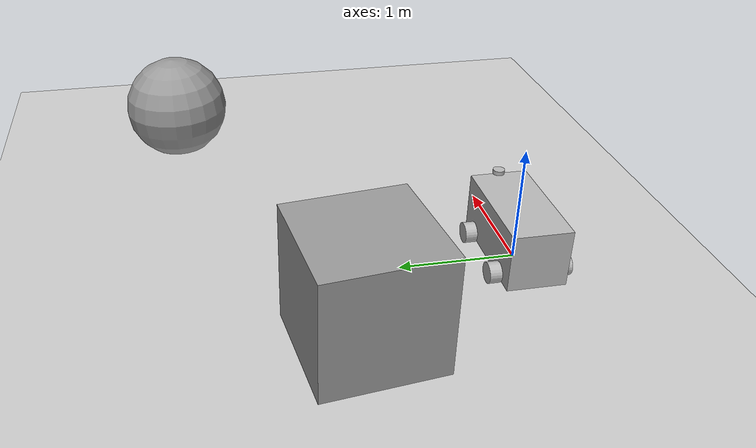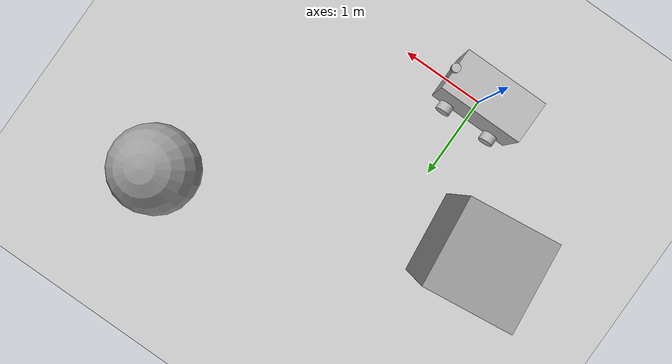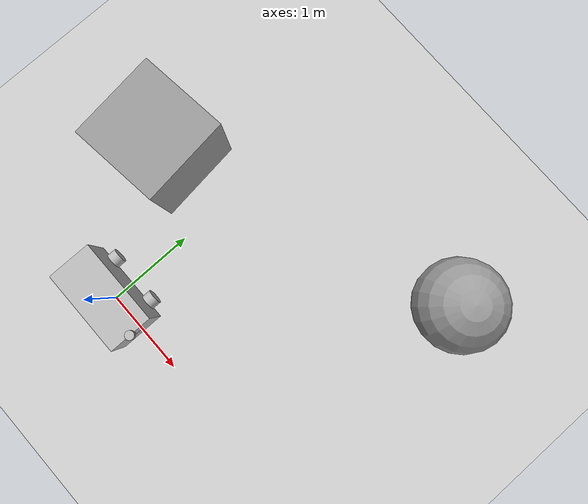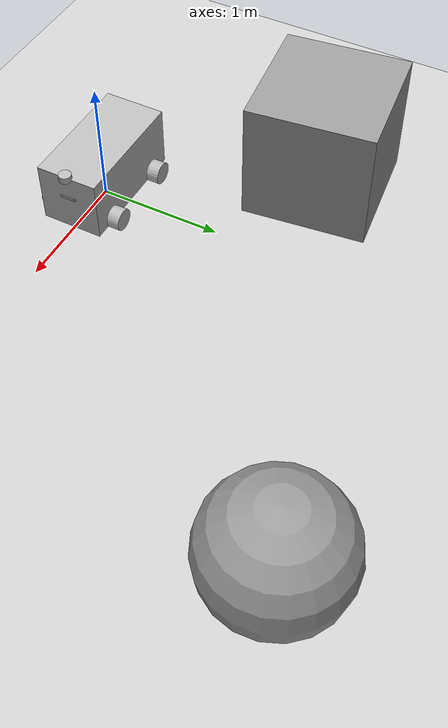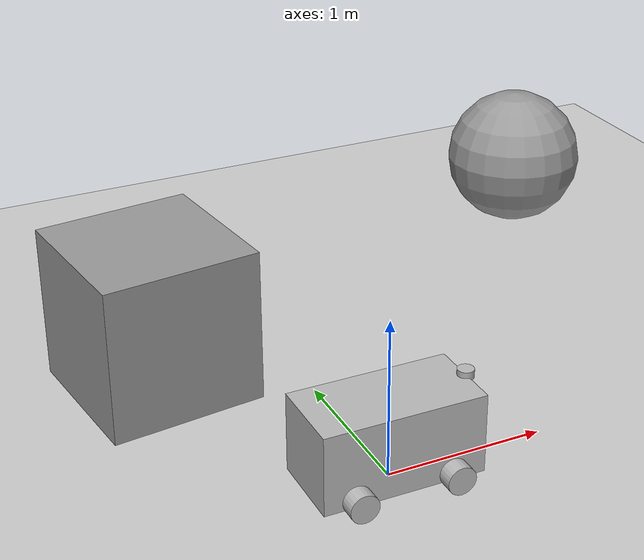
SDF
<sdf version="1.7">
 <world name="default">
  <light name="sun" type="directional">
   <pose>0 0 10 0 -0 0</pose>
   <diffuse>0.8 0.8 0.8 1</diffuse>
   <specular>0.2 0.2 0.2 1</specular>
   <attenuation>
    <range>1000</range>
    <constant>0.9</constant>
    <linear>0.01</linear>
    <quadratic>0.001</quadratic>
   </attenuation>
   <direction>-0.5 0.1 -0.9</direction>
   <spot><inner_angle>0</inner_angle><outer_angle>0</outer_angle><falloff>0</falloff></spot>
  </light>
  <model name="ground_plane">
   <static>1</static>
   <link name="link">
    <collision name="collision">
     <geometry><plane><normal>0 0 1</normal><size>100 100</size></plane></geometry>
     <surface><friction><ode><mu>100</mu><mu2>50</mu2></ode></friction></surface>
    </collision>
    <visual name="visual">
     <cast_shadows>0</cast_shadows>
     <geometry><plane><normal>0 0 1</normal><size>100 100</size></plane></geometry>
     <material>
      <script><uri>file://media/materials/scripts/gazebo.material</uri><name>Gazebo/Grey</name></script>
     </material>
    </visual>
   </link>
  </model>
  <gravity>0 0 -9.8</gravity>
  <magnetic_field>6e-06 2.3e-05 -4.2e-05</magnetic_field>
  <atmosphere type="adiabatic"/>
  <physics type="ode">
   <max_step_size>0.001</max_step_size>
   <real_time_factor>1</real_time_factor>
   <real_time_update_rate>1000</real_time_update_rate>
  </physics>
  <scene><ambient>0.4 0.4 0.4 1</ambient><background>0.7 0.7 0.7 1</background><shadows>1</shadows></scene>
  <spherical_coordinates>
   <surface_model>EARTH_WGS84</surface_model>
   <latitude_deg>0</latitude_deg>
   <longitude_deg>0</longitude_deg>
   <elevation>0</elevation>
   <heading_deg>0</heading_deg>
  </spherical_coordinates>
  <model name="unit_box">
   <pose>-0.86866 1.50852 0.499995 0 -1e-05 0.11713</pose>
   <link name="link">
    <inertial>
     <mass>1</mass>
     <inertia>
      <ixx>0.166667</ixx>
      <ixy>0</ixy>
      <ixz>0</ixz>
      <iyy>0.166667</iyy>
      <iyz>0</iyz>
      <izz>0.166667</izz>
     </inertia>
    </inertial>
    <collision name="collision"><geometry><box><size>1 1 1</size></box></geometry></collision>
    <visual name="visual">
     <geometry><box><size>1 1 1</size></box></geometry>
     <material>
      <script><name>Gazebo/Grey</name><uri>file://media/materials/scripts/gazebo.material</uri></script>
     </material>
    </visual>
   </link>
  </model>
  <model name="unit_sphere">
   <pose>2.47742 2.71061 0.5 -0.026319 -0.000896 -0.057733</pose>
   <link name="link">
    <inertial>
     <mass>1</mass>
     <inertia><ixx>0.1</ixx><ixy>0</ixy><ixz>0</ixz><iyy>0.1</iyy><iyz>0</iyz><izz>0.1</izz></inertia>
    </inertial>
    <collision name="collision"><geometry><sphere><radius>0.5</radius></sphere></geometry></collision>
    <visual name="visual">
     <geometry><sphere><radius>0.5</radius></sphere></geometry>
     <material>
      <script><name>Gazebo/Grey</name><uri>file://media/materials/scripts/gazebo.material</uri></script>
     </material>
    </visual>
   </link>
  </model>
  <model name="IRIS_bot">
   <link name="base_link">
    <inertial>
     <pose>0.005242 0 0.00231 1.5708 -0 1.5708</pose>
     <mass>15.26</mass>
     <inertia>
      <ixx>1.61271</ixx>
      <ixy>-4.79877e-18</ixy>
      <ixz>-1.12123e-17</ixz>
      <iyy>1.60425</iyy>
      <iyz>-0.0169402</iyz>
      <izz>0.635633</izz>
     </inertia>
    </inertial>
    <collision name="base_link_collision"><geometry><box><size>1 0.5 0.5</size></box></geometry></collision>
    <collision name="base_link_fixed_joint_lump__camera_link_collision_1">
     <pose>0.5 0 0.05 0 -0 0</pose>
     <geometry><box><size>0.015 0.13 0.022</size></box></geometry>
    </collision>
    <collision name="base_link_fixed_joint_lump__lidar_link_collision_2">
     <pose>0.5 0 0.26 0 -0 0</pose>
     <geometry><cylinder><length>0.055</length><radius>0.0508</radius></cylinder></geometry>
    </collision>
    <visual name="base_link_visual"><geometry><box><size>1 0.5 0.5</size></box></geometry></visual>
    <visual name="base_link_fixed_joint_lump__camera_link_visual_1">
     <pose>0.5 0 0.05 0 -0 0</pose>
     <geometry><box><size>0.015 0.13 0.022</size></box></geometry>
    </visual>
    <visual name="base_link_fixed_joint_lump__imu_link_visual_2">
     <pose>0 0 0.01 0 -0 0</pose>
     <geometry><box><size>0.1 0.1 0.1</size></box></geometry>
    </visual>
    <visual name="base_link_fixed_joint_lump__lidar_link_visual_3">
     <pose>0.5 0 0.26 0 -0 0</pose>
     <geometry><cylinder><length>0.055</length><radius>0.0508</radius></cylinder></geometry>
    </visual>
    <sensor name="depth_camera" type="depth">
     <visualize>1</visualize>
     <update_rate>30</update_rate>
     <camera name="camera">
      <horizontal_fov>1.0472</horizontal_fov>
      <image><width>640</width><height>480</height><format>R8G8B8</format></image>
      <clip><near>0.05</near><far>3</far></clip>
     </camera>
     <plugin name="depth_camera_controller" filename="libgazebo_ros_camera.so">
      <baseline>0.2</baseline>
      <alwaysOn>1</alwaysOn>
      <updateRate>0.0</updateRate>
      <frame_name>camera_depth_frame</frame_name>
      <pointCloudCutoff>0.5</pointCloudCutoff>
      <pointCloudCutoffMax>3.0</pointCloudCutoffMax>
      <distortionK1>0</distortionK1>
      <distortionK2>0</distortionK2>
      <distortionK3>0</distortionK3>
      <distortionT1>0</distortionT1>
      <distortionT2>0</distortionT2>
      <CxPrime>0</CxPrime>
      <Cx>0</Cx>
      <Cy>0</Cy>
      <focalLength>0</focalLength>
      <hackBaseline>0</hackBaseline>
     </plugin>
     <pose>0.5 0 0.05 0 -0 0</pose>
    </sensor>
    <sensor name="imu_sensor" type="imu">
     <plugin name="imu_plugin" filename="libgazebo_ros_imu_sensor.so">
      <ros><namespace>/demo</namespace><remapping>~/out:=imu</remapping></ros>
      <initial_orientation_as_reference>0</initial_orientation_as_reference>
     </plugin>
     <always_on>1</always_on>
     <update_rate>100</update_rate>
     <visualize>1</visualize>
     <imu>
      <angular_velocity>
       <x>
        <noise type="gaussian">
         <mean>0</mean>
         <stddev>0.0002</stddev>
         <bias_mean>7.5e-06</bias_mean>
         <bias_stddev>8e-07</bias_stddev>
        </noise>
       </x>
       <y>
        <noise type="gaussian">
         <mean>0</mean>
         <stddev>0.0002</stddev>
         <bias_mean>7.5e-06</bias_mean>
         <bias_stddev>8e-07</bias_stddev>
        </noise>
       </y>
       <z>
        <noise type="gaussian">
         <mean>0</mean>
         <stddev>0.0002</stddev>
         <bias_mean>7.5e-06</bias_mean>
         <bias_stddev>8e-07</bias_stddev>
        </noise>
       </z>
      </angular_velocity>
      <linear_acceleration>
       <x>
        <noise type="gaussian">
         <mean>0</mean>
         <stddev>0.017</stddev>
         <bias_mean>0.1</bias_mean>
         <bias_stddev>0.001</bias_stddev>
        </noise>
       </x>
       <y>
        <noise type="gaussian">
         <mean>0</mean>
         <stddev>0.017</stddev>
         <bias_mean>0.1</bias_mean>
         <bias_stddev>0.001</bias_stddev>
        </noise>
       </y>
       <z>
        <noise type="gaussian">
         <mean>0</mean>
         <stddev>0.017</stddev>
         <bias_mean>0.1</bias_mean>
         <bias_stddev>0.001</bias_stddev>
        </noise>
       </z>
      </linear_acceleration>
     </imu>
     <pose>0 0 0.01 0 -0 0</pose>
    </sensor>
    <sensor name="lidar" type="ray">
     <always_on>1</always_on>
     <visualize>1</visualize>
     <update_rate>5</update_rate>
     <ray>
      <scan>
       <horizontal>
        <samples>86</samples>
        <resolution>1</resolution>
        <min_angle>0</min_angle>
        <max_angle>3.14169</max_angle>
       </horizontal>
       <vertical><samples>1</samples><min_angle>0</min_angle><max_angle>0</max_angle></vertical>
      </scan>
      <range><min>0.12</min><max>3.5</max><resolution>0.015</resolution></range>
      <noise><type>gaussian</type><mean>0</mean><stddev>0.01</stddev></noise>
     </ray>
     <plugin name="scan" filename="libgazebo_ros_ray_sensor.so">
      <ros><remapping>~/out:=scan</remapping></ros>
      <output_type>sensor_msgs/LaserScan</output_type>
      <frame_name>lidar_link</frame_name>
     </plugin>
     <pose>0.5 0 0.26 0 -0 0</pose>
    </sensor>
   </link>
   <joint name="drivewhl_l_back_joint" type="revolute">
    <pose relative_to="base_link">-0.3 0.3008 -0.2 0 -0 0</pose>
    <parent>base_link</parent>
    <child>drivewhl_l_back_link</child>
    <axis>
     <xyz>0 1 0</xyz>
     <limit><lower>-1e+16</lower><upper>1e+16</upper></limit>
     <dynamics><spring_reference>0</spring_reference><spring_stiffness>0</spring_stiffness></dynamics>
    </axis>
   </joint>
   <link name="drivewhl_l_back_link">
    <pose relative_to="drivewhl_l_back_joint">0 0 0 0 -0 0</pose>
    <inertial>
     <pose>0 0 0 1.5708 -0 0</pose>
     <mass>0.5</mass>
     <inertia>
      <ixx>0.00142023</ixx>
      <ixy>0</ixy>
      <ixz>0</ixz>
      <iyy>0.00142023</iyy>
      <iyz>0</iyz>
      <izz>0.00198025</izz>
     </inertia>
    </inertial>
    <collision name="drivewhl_l_back_link_collision">
     <pose>0 0 0 1.5708 -0 0</pose>
     <geometry><cylinder><length>0.1016</length><radius>0.089</radius></cylinder></geometry>
    </collision>
    <visual name="drivewhl_l_back_link_visual">
     <pose>0 0 0 1.5708 -0 0</pose>
     <geometry><cylinder><length>0.1016</length><radius>0.089</radius></cylinder></geometry>
    </visual>
   </link>
   <joint name="drivewhl_l_front_joint" type="revolute">
    <pose relative_to="base_link">0.3 0.3008 -0.2 0 -0 0</pose>
    <parent>base_link</parent>
    <child>drivewhl_l_front_link</child>
    <axis>
     <xyz>0 1 0</xyz>
     <limit><lower>-1e+16</lower><upper>1e+16</upper></limit>
     <dynamics><spring_reference>0</spring_reference><spring_stiffness>0</spring_stiffness></dynamics>
    </axis>
   </joint>
   <link name="drivewhl_l_front_link">
    <pose relative_to="drivewhl_l_front_joint">0 0 0 0 -0 0</pose>
    <inertial>
     <pose>0 0 0 1.5708 -0 0</pose>
     <mass>0.5</mass>
     <inertia>
      <ixx>0.00142023</ixx>
      <ixy>0</ixy>
      <ixz>0</ixz>
      <iyy>0.00142023</iyy>
      <iyz>0</iyz>
      <izz>0.00198025</izz>
     </inertia>
    </inertial>
    <collision name="drivewhl_l_front_link_collision">
     <pose>0 0 0 1.5708 -0 0</pose>
     <geometry><cylinder><length>0.1016</length><radius>0.089</radius></cylinder></geometry>
    </collision>
    <visual name="drivewhl_l_front_link_visual">
     <pose>0 0 0 1.5708 -0 0</pose>
     <geometry><cylinder><length>0.1016</length><radius>0.089</radius></cylinder></geometry>
    </visual>
   </link>
   <joint name="drivewhl_r_back_joint" type="revolute">
    <pose relative_to="base_link">-0.3 -0.3008 -0.2 0 -0 0</pose>
    <parent>base_link</parent>
    <child>drivewhl_r_back_link</child>
    <axis>
     <xyz>0 1 0</xyz>
     <limit><lower>-1e+16</lower><upper>1e+16</upper></limit>
     <dynamics><spring_reference>0</spring_reference><spring_stiffness>0</spring_stiffness></dynamics>
    </axis>
   </joint>
   <link name="drivewhl_r_back_link">
    <pose relative_to="drivewhl_r_back_joint">0 0 0 0 -0 0</pose>
    <inertial>
     <pose>0 0 0 1.5708 -0 0</pose>
     <mass>0.5</mass>
     <inertia>
      <ixx>0.00142023</ixx>
      <ixy>0</ixy>
      <ixz>0</ixz>
      <iyy>0.00142023</iyy>
      <iyz>0</iyz>
      <izz>0.00198025</izz>
     </inertia>
    </inertial>
    <collision name="drivewhl_r_back_link_collision">
     <pose>0 0 0 1.5708 -0 0</pose>
     <geometry><cylinder><length>0.1016</length><radius>0.089</radius></cylinder></geometry>
    </collision>
    <visual name="drivewhl_r_back_link_visual">
     <pose>0 0 0 1.5708 -0 0</pose>
     <geometry><cylinder><length>0.1016</length><radius>0.089</radius></cylinder></geometry>
    </visual>
   </link>
   <joint name="drivewhl_r_front_joint" type="revolute">
    <pose relative_to="base_link">0.3 -0.3008 -0.2 0 -0 0</pose>
    <parent>base_link</parent>
    <child>drivewhl_r_front_link</child>
    <axis>
     <xyz>0 1 0</xyz>
     <limit><lower>-1e+16</lower><upper>1e+16</upper></limit>
     <dynamics><spring_reference>0</spring_reference><spring_stiffness>0</spring_stiffness></dynamics>
    </axis>
   </joint>
   <link name="drivewhl_r_front_link">
    <pose relative_to="drivewhl_r_front_joint">0 0 0 0 -0 0</pose>
    <inertial>
     <pose>0 0 0 1.5708 -0 0</pose>
     <mass>0.5</mass>
     <inertia>
      <ixx>0.00142023</ixx>
      <ixy>0</ixy>
      <ixz>0</ixz>
      <iyy>0.00142023</iyy>
      <iyz>0</iyz>
      <izz>0.00198025</izz>
     </inertia>
    </inertial>
    <collision name="drivewhl_r_front_link_collision">
     <pose>0 0 0 1.5708 -0 0</pose>
     <geometry><cylinder><length>0.1016</length><radius>0.089</radius></cylinder></geometry>
    </collision>
    <visual name="drivewhl_r_front_link_visual">
     <pose>0 0 0 1.5708 -0 0</pose>
     <geometry><cylinder><length>0.1016</length><radius>0.089</radius></cylinder></geometry>
    </visual>
   </link>
   <static>0</static>
   <plugin name="diff_drive" filename="libgazebo_ros_diff_drive.so">
    <ros><namespace>/demo</namespace></ros>
    <num_wheel_pairs>2</num_wheel_pairs>
    <left_joint>drivewhl_l_back_joint</left_joint>
    <left_joint>drivewhl_l_front_joint</left_joint>
    <right_joint>drivewhl_r_back_joint</right_joint>
    <right_joint>drivewhl_r_front_joint</right_joint>
    <wheel_separation>0.4</wheel_separation>
    <wheel_diameter>0.2</wheel_diameter>
    <max_wheel_torque>20</max_wheel_torque>
    <max_wheel_acceleration>1.0</max_wheel_acceleration>
    <publish_odom>1</publish_odom>
    <publish_odom_tf>0</publish_odom_tf>
    <publish_wheel_tf>1</publish_wheel_tf>
    <odometry_frame>odom</odometry_frame>
    <robot_base_frame>base_link</robot_base_frame>
   </plugin>
   <pose>-0.015064 0.001794 0.289 -0 -0 -0.003194</pose>
  </model>
 </world>
</sdf>
